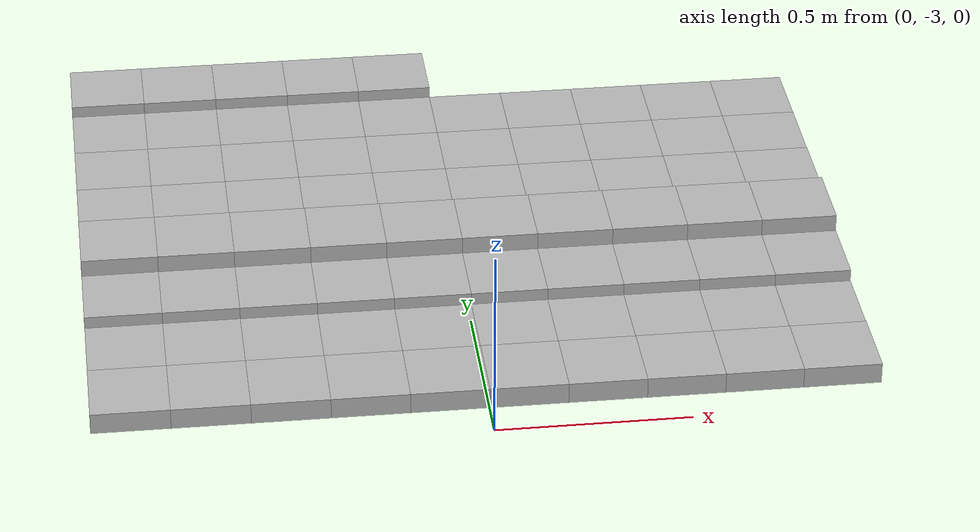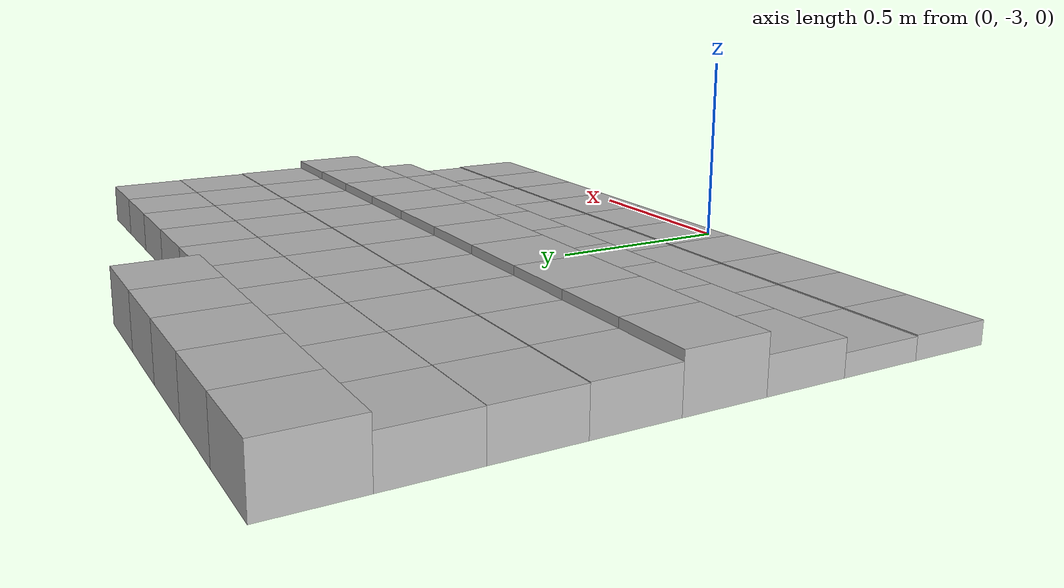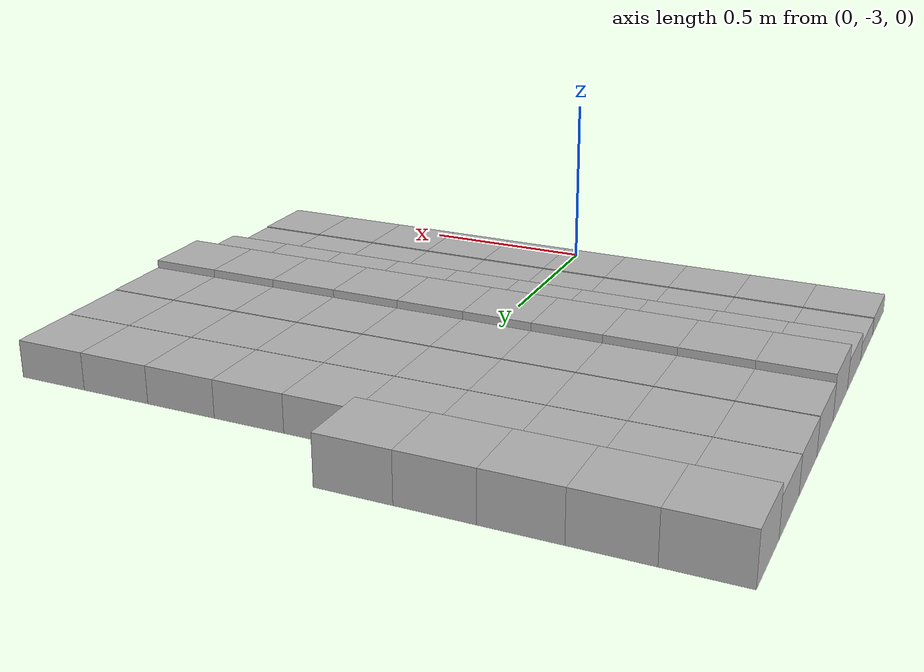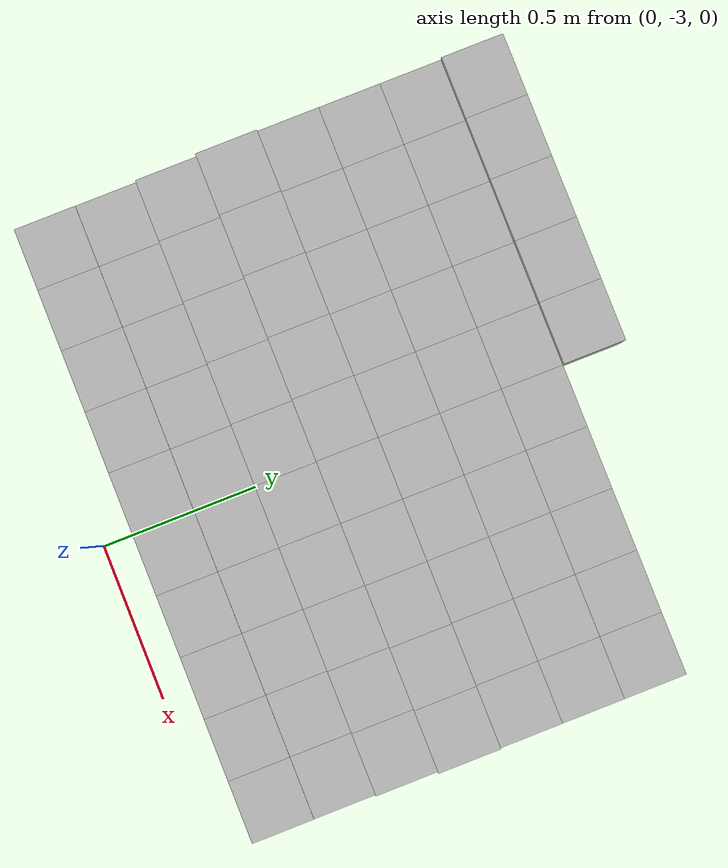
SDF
<sdf version="1.6">
 <model name="Terrain">
  <static>true</static>
  <link name="box_7_0">
   <pose>-0.9 -1.4 0.0680024866699 0 0 0</pose>
   <inertial>
    <mass>1.0</mass>
    <inertia><ixx>0.0</ixx><ixy>0.0</ixy><ixz>0.0</ixz><iyy>0.0</iyy><iyz>0.0</iyz><izz>0.0</izz></inertia>
   </inertial>
   <collision name="collision"><geometry><box><size>0.2 0.2 0.13600497334</size></box></geometry></collision>
   <visual name="visual"><geometry><box><size>0.2 0.2 0.13600497334</size></box></geometry></visual>
  </link>
  <link name="box_7_1">
   <pose>-0.7 -1.4 0.0680024866699 0 0 0</pose>
   <inertial>
    <mass>1.0</mass>
    <inertia><ixx>0.0</ixx><ixy>0.0</ixy><ixz>0.0</ixz><iyy>0.0</iyy><iyz>0.0</iyz><izz>0.0</izz></inertia>
   </inertial>
   <collision name="collision"><geometry><box><size>0.2 0.2 0.13600497334</size></box></geometry></collision>
   <visual name="visual"><geometry><box><size>0.2 0.2 0.13600497334</size></box></geometry></visual>
  </link>
  <link name="box_7_2">
   <pose>-0.5 -1.4 0.0680024866699 0 0 0</pose>
   <inertial>
    <mass>1.0</mass>
    <inertia><ixx>0.0</ixx><ixy>0.0</ixy><ixz>0.0</ixz><iyy>0.0</iyy><iyz>0.0</iyz><izz>0.0</izz></inertia>
   </inertial>
   <collision name="collision"><geometry><box><size>0.2 0.2 0.13600497334</size></box></geometry></collision>
   <visual name="visual"><geometry><box><size>0.2 0.2 0.13600497334</size></box></geometry></visual>
  </link>
  <link name="box_7_3">
   <pose>-0.3 -1.4 0.0680024866699 0 0 0</pose>
   <inertial>
    <mass>1.0</mass>
    <inertia><ixx>0.0</ixx><ixy>0.0</ixy><ixz>0.0</ixz><iyy>0.0</iyy><iyz>0.0</iyz><izz>0.0</izz></inertia>
   </inertial>
   <collision name="collision"><geometry><box><size>0.2 0.2 0.13600497334</size></box></geometry></collision>
   <visual name="visual"><geometry><box><size>0.2 0.2 0.13600497334</size></box></geometry></visual>
  </link>
  <link name="box_7_4">
   <pose>-0.1 -1.4 0.0680024866699 0 0 0</pose>
   <inertial>
    <mass>1.0</mass>
    <inertia><ixx>0.0</ixx><ixy>0.0</ixy><ixz>0.0</ixz><iyy>0.0</iyy><iyz>0.0</iyz><izz>0.0</izz></inertia>
   </inertial>
   <collision name="collision"><geometry><box><size>0.2 0.2 0.13600497334</size></box></geometry></collision>
   <visual name="visual"><geometry><box><size>0.2 0.2 0.13600497334</size></box></geometry></visual>
  </link>
  <link name="box_8_0">
   <pose>-0.9 -1.6 0.0525224692958 0 0 0</pose>
   <inertial>
    <mass>1.0</mass>
    <inertia><ixx>0.0</ixx><ixy>0.0</ixy><ixz>0.0</ixz><iyy>0.0</iyy><iyz>0.0</iyz><izz>0.0</izz></inertia>
   </inertial>
   <collision name="collision"><geometry><box><size>0.2 0.2 0.105044938592</size></box></geometry></collision>
   <visual name="visual"><geometry><box><size>0.2 0.2 0.105044938592</size></box></geometry></visual>
  </link>
  <link name="box_8_1">
   <pose>-0.7 -1.6 0.0525224692958 0 0 0</pose>
   <inertial>
    <mass>1.0</mass>
    <inertia><ixx>0.0</ixx><ixy>0.0</ixy><ixz>0.0</ixz><iyy>0.0</iyy><iyz>0.0</iyz><izz>0.0</izz></inertia>
   </inertial>
   <collision name="collision"><geometry><box><size>0.2 0.2 0.105044938592</size></box></geometry></collision>
   <visual name="visual"><geometry><box><size>0.2 0.2 0.105044938592</size></box></geometry></visual>
  </link>
  <link name="box_8_2">
   <pose>-0.5 -1.6 0.0525224692958 0 0 0</pose>
   <inertial>
    <mass>1.0</mass>
    <inertia><ixx>0.0</ixx><ixy>0.0</ixy><ixz>0.0</ixz><iyy>0.0</iyy><iyz>0.0</iyz><izz>0.0</izz></inertia>
   </inertial>
   <collision name="collision"><geometry><box><size>0.2 0.2 0.105044938592</size></box></geometry></collision>
   <visual name="visual"><geometry><box><size>0.2 0.2 0.105044938592</size></box></geometry></visual>
  </link>
  <link name="box_8_3">
   <pose>-0.3 -1.6 0.0525224692958 0 0 0</pose>
   <inertial>
    <mass>1.0</mass>
    <inertia><ixx>0.0</ixx><ixy>0.0</ixy><ixz>0.0</ixz><iyy>0.0</iyy><iyz>0.0</iyz><izz>0.0</izz></inertia>
   </inertial>
   <collision name="collision"><geometry><box><size>0.2 0.2 0.105044938592</size></box></geometry></collision>
   <visual name="visual"><geometry><box><size>0.2 0.2 0.105044938592</size></box></geometry></visual>
  </link>
  <link name="box_8_4">
   <pose>-0.1 -1.6 0.0525224692958 0 0 0</pose>
   <inertial>
    <mass>1.0</mass>
    <inertia><ixx>0.0</ixx><ixy>0.0</ixy><ixz>0.0</ixz><iyy>0.0</iyy><iyz>0.0</iyz><izz>0.0</izz></inertia>
   </inertial>
   <collision name="collision"><geometry><box><size>0.2 0.2 0.105044938592</size></box></geometry></collision>
   <visual name="visual"><geometry><box><size>0.2 0.2 0.105044938592</size></box></geometry></visual>
  </link>
  <link name="box_8_5">
   <pose>0.1 -1.6 0.0525224692958 0 0 0</pose>
   <inertial>
    <mass>1.0</mass>
    <inertia><ixx>0.0</ixx><ixy>0.0</ixy><ixz>0.0</ixz><iyy>0.0</iyy><iyz>0.0</iyz><izz>0.0</izz></inertia>
   </inertial>
   <collision name="collision"><geometry><box><size>0.2 0.2 0.105044938592</size></box></geometry></collision>
   <visual name="visual"><geometry><box><size>0.2 0.2 0.105044938592</size></box></geometry></visual>
  </link>
  <link name="box_8_6">
   <pose>0.3 -1.6 0.0525224692958 0 0 0</pose>
   <inertial>
    <mass>1.0</mass>
    <inertia><ixx>0.0</ixx><ixy>0.0</ixy><ixz>0.0</ixz><iyy>0.0</iyy><iyz>0.0</iyz><izz>0.0</izz></inertia>
   </inertial>
   <collision name="collision"><geometry><box><size>0.2 0.2 0.105044938592</size></box></geometry></collision>
   <visual name="visual"><geometry><box><size>0.2 0.2 0.105044938592</size></box></geometry></visual>
  </link>
  <link name="box_8_7">
   <pose>0.5 -1.6 0.0525224692958 0 0 0</pose>
   <inertial>
    <mass>1.0</mass>
    <inertia><ixx>0.0</ixx><ixy>0.0</ixy><ixz>0.0</ixz><iyy>0.0</iyy><iyz>0.0</iyz><izz>0.0</izz></inertia>
   </inertial>
   <collision name="collision"><geometry><box><size>0.2 0.2 0.105044938592</size></box></geometry></collision>
   <visual name="visual"><geometry><box><size>0.2 0.2 0.105044938592</size></box></geometry></visual>
  </link>
  <link name="box_8_8">
   <pose>0.7 -1.6 0.0525224692958 0 0 0</pose>
   <inertial>
    <mass>1.0</mass>
    <inertia><ixx>0.0</ixx><ixy>0.0</ixy><ixz>0.0</ixz><iyy>0.0</iyy><iyz>0.0</iyz><izz>0.0</izz></inertia>
   </inertial>
   <collision name="collision"><geometry><box><size>0.2 0.2 0.105044938592</size></box></geometry></collision>
   <visual name="visual"><geometry><box><size>0.2 0.2 0.105044938592</size></box></geometry></visual>
  </link>
  <link name="box_8_9">
   <pose>0.9 -1.6 0.0525224692958 0 0 0</pose>
   <inertial>
    <mass>1.0</mass>
    <inertia><ixx>0.0</ixx><ixy>0.0</ixy><ixz>0.0</ixz><iyy>0.0</iyy><iyz>0.0</iyz><izz>0.0</izz></inertia>
   </inertial>
   <collision name="collision"><geometry><box><size>0.2 0.2 0.105044938592</size></box></geometry></collision>
   <visual name="visual"><geometry><box><size>0.2 0.2 0.105044938592</size></box></geometry></visual>
  </link>
  <link name="box_9_0">
   <pose>-0.9 -1.8 0.0529010168153 0 0 0</pose>
   <inertial>
    <mass>1.0</mass>
    <inertia><ixx>0.0</ixx><ixy>0.0</ixy><ixz>0.0</ixz><iyy>0.0</iyy><iyz>0.0</iyz><izz>0.0</izz></inertia>
   </inertial>
   <collision name="collision"><geometry><box><size>0.2 0.2 0.105802033631</size></box></geometry></collision>
   <visual name="visual"><geometry><box><size>0.2 0.2 0.105802033631</size></box></geometry></visual>
  </link>
  <link name="box_9_1">
   <pose>-0.7 -1.8 0.0529010168153 0 0 0</pose>
   <inertial>
    <mass>1.0</mass>
    <inertia><ixx>0.0</ixx><ixy>0.0</ixy><ixz>0.0</ixz><iyy>0.0</iyy><iyz>0.0</iyz><izz>0.0</izz></inertia>
   </inertial>
   <collision name="collision"><geometry><box><size>0.2 0.2 0.105802033631</size></box></geometry></collision>
   <visual name="visual"><geometry><box><size>0.2 0.2 0.105802033631</size></box></geometry></visual>
  </link>
  <link name="box_9_2">
   <pose>-0.5 -1.8 0.0529010168153 0 0 0</pose>
   <inertial>
    <mass>1.0</mass>
    <inertia><ixx>0.0</ixx><ixy>0.0</ixy><ixz>0.0</ixz><iyy>0.0</iyy><iyz>0.0</iyz><izz>0.0</izz></inertia>
   </inertial>
   <collision name="collision"><geometry><box><size>0.2 0.2 0.105802033631</size></box></geometry></collision>
   <visual name="visual"><geometry><box><size>0.2 0.2 0.105802033631</size></box></geometry></visual>
  </link>
  <link name="box_9_3">
   <pose>-0.3 -1.8 0.0529010168153 0 0 0</pose>
   <inertial>
    <mass>1.0</mass>
    <inertia><ixx>0.0</ixx><ixy>0.0</ixy><ixz>0.0</ixz><iyy>0.0</iyy><iyz>0.0</iyz><izz>0.0</izz></inertia>
   </inertial>
   <collision name="collision"><geometry><box><size>0.2 0.2 0.105802033631</size></box></geometry></collision>
   <visual name="visual"><geometry><box><size>0.2 0.2 0.105802033631</size></box></geometry></visual>
  </link>
  <link name="box_9_4">
   <pose>-0.1 -1.8 0.0529010168153 0 0 0</pose>
   <inertial>
    <mass>1.0</mass>
    <inertia><ixx>0.0</ixx><ixy>0.0</ixy><ixz>0.0</ixz><iyy>0.0</iyy><iyz>0.0</iyz><izz>0.0</izz></inertia>
   </inertial>
   <collision name="collision"><geometry><box><size>0.2 0.2 0.105802033631</size></box></geometry></collision>
   <visual name="visual"><geometry><box><size>0.2 0.2 0.105802033631</size></box></geometry></visual>
  </link>
  <link name="box_9_5">
   <pose>0.1 -1.8 0.0529010168153 0 0 0</pose>
   <inertial>
    <mass>1.0</mass>
    <inertia><ixx>0.0</ixx><ixy>0.0</ixy><ixz>0.0</ixz><iyy>0.0</iyy><iyz>0.0</iyz><izz>0.0</izz></inertia>
   </inertial>
   <collision name="collision"><geometry><box><size>0.2 0.2 0.105802033631</size></box></geometry></collision>
   <visual name="visual"><geometry><box><size>0.2 0.2 0.105802033631</size></box></geometry></visual>
  </link>
  <link name="box_9_6">
   <pose>0.3 -1.8 0.0529010168153 0 0 0</pose>
   <inertial>
    <mass>1.0</mass>
    <inertia><ixx>0.0</ixx><ixy>0.0</ixy><ixz>0.0</ixz><iyy>0.0</iyy><iyz>0.0</iyz><izz>0.0</izz></inertia>
   </inertial>
   <collision name="collision"><geometry><box><size>0.2 0.2 0.105802033631</size></box></geometry></collision>
   <visual name="visual"><geometry><box><size>0.2 0.2 0.105802033631</size></box></geometry></visual>
  </link>
  <link name="box_9_7">
   <pose>0.5 -1.8 0.0529010168153 0 0 0</pose>
   <inertial>
    <mass>1.0</mass>
    <inertia><ixx>0.0</ixx><ixy>0.0</ixy><ixz>0.0</ixz><iyy>0.0</iyy><iyz>0.0</iyz><izz>0.0</izz></inertia>
   </inertial>
   <collision name="collision"><geometry><box><size>0.2 0.2 0.105802033631</size></box></geometry></collision>
   <visual name="visual"><geometry><box><size>0.2 0.2 0.105802033631</size></box></geometry></visual>
  </link>
  <link name="box_9_8">
   <pose>0.7 -1.8 0.0529010168153 0 0 0</pose>
   <inertial>
    <mass>1.0</mass>
    <inertia><ixx>0.0</ixx><ixy>0.0</ixy><ixz>0.0</ixz><iyy>0.0</iyy><iyz>0.0</iyz><izz>0.0</izz></inertia>
   </inertial>
   <collision name="collision"><geometry><box><size>0.2 0.2 0.105802033631</size></box></geometry></collision>
   <visual name="visual"><geometry><box><size>0.2 0.2 0.105802033631</size></box></geometry></visual>
  </link>
  <link name="box_9_9">
   <pose>0.9 -1.8 0.0529010168153 0 0 0</pose>
   <inertial>
    <mass>1.0</mass>
    <inertia><ixx>0.0</ixx><ixy>0.0</ixy><ixz>0.0</ixz><iyy>0.0</iyy><iyz>0.0</iyz><izz>0.0</izz></inertia>
   </inertial>
   <collision name="collision"><geometry><box><size>0.2 0.2 0.105802033631</size></box></geometry></collision>
   <visual name="visual"><geometry><box><size>0.2 0.2 0.105802033631</size></box></geometry></visual>
  </link>
  <link name="box_10_0">
   <pose>-0.9 -2.0 0.0537871574872 0 0 0</pose>
   <inertial>
    <mass>1.0</mass>
    <inertia><ixx>0.0</ixx><ixy>0.0</ixy><ixz>0.0</ixz><iyy>0.0</iyy><iyz>0.0</iyz><izz>0.0</izz></inertia>
   </inertial>
   <collision name="collision"><geometry><box><size>0.2 0.2 0.107574314974</size></box></geometry></collision>
   <visual name="visual"><geometry><box><size>0.2 0.2 0.107574314974</size></box></geometry></visual>
  </link>
  <link name="box_10_1">
   <pose>-0.7 -2.0 0.0537871574872 0 0 0</pose>
   <inertial>
    <mass>1.0</mass>
    <inertia><ixx>0.0</ixx><ixy>0.0</ixy><ixz>0.0</ixz><iyy>0.0</iyy><iyz>0.0</iyz><izz>0.0</izz></inertia>
   </inertial>
   <collision name="collision"><geometry><box><size>0.2 0.2 0.107574314974</size></box></geometry></collision>
   <visual name="visual"><geometry><box><size>0.2 0.2 0.107574314974</size></box></geometry></visual>
  </link>
  <link name="box_10_2">
   <pose>-0.5 -2.0 0.0537871574872 0 0 0</pose>
   <inertial>
    <mass>1.0</mass>
    <inertia><ixx>0.0</ixx><ixy>0.0</ixy><ixz>0.0</ixz><iyy>0.0</iyy><iyz>0.0</iyz><izz>0.0</izz></inertia>
   </inertial>
   <collision name="collision"><geometry><box><size>0.2 0.2 0.107574314974</size></box></geometry></collision>
   <visual name="visual"><geometry><box><size>0.2 0.2 0.107574314974</size></box></geometry></visual>
  </link>
  <link name="box_10_3">
   <pose>-0.3 -2.0 0.0537871574872 0 0 0</pose>
   <inertial>
    <mass>1.0</mass>
    <inertia><ixx>0.0</ixx><ixy>0.0</ixy><ixz>0.0</ixz><iyy>0.0</iyy><iyz>0.0</iyz><izz>0.0</izz></inertia>
   </inertial>
   <collision name="collision"><geometry><box><size>0.2 0.2 0.107574314974</size></box></geometry></collision>
   <visual name="visual"><geometry><box><size>0.2 0.2 0.107574314974</size></box></geometry></visual>
  </link>
  <link name="box_10_4">
   <pose>-0.1 -2.0 0.0537871574872 0 0 0</pose>
   <inertial>
    <mass>1.0</mass>
    <inertia><ixx>0.0</ixx><ixy>0.0</ixy><ixz>0.0</ixz><iyy>0.0</iyy><iyz>0.0</iyz><izz>0.0</izz></inertia>
   </inertial>
   <collision name="collision"><geometry><box><size>0.2 0.2 0.107574314974</size></box></geometry></collision>
   <visual name="visual"><geometry><box><size>0.2 0.2 0.107574314974</size></box></geometry></visual>
  </link>
  <link name="box_10_5">
   <pose>0.1 -2.0 0.0537871574872 0 0 0</pose>
   <inertial>
    <mass>1.0</mass>
    <inertia><ixx>0.0</ixx><ixy>0.0</ixy><ixz>0.0</ixz><iyy>0.0</iyy><iyz>0.0</iyz><izz>0.0</izz></inertia>
   </inertial>
   <collision name="collision"><geometry><box><size>0.2 0.2 0.107574314974</size></box></geometry></collision>
   <visual name="visual"><geometry><box><size>0.2 0.2 0.107574314974</size></box></geometry></visual>
  </link>
  <link name="box_10_6">
   <pose>0.3 -2.0 0.0537871574872 0 0 0</pose>
   <inertial>
    <mass>1.0</mass>
    <inertia><ixx>0.0</ixx><ixy>0.0</ixy><ixz>0.0</ixz><iyy>0.0</iyy><iyz>0.0</iyz><izz>0.0</izz></inertia>
   </inertial>
   <collision name="collision"><geometry><box><size>0.2 0.2 0.107574314974</size></box></geometry></collision>
   <visual name="visual"><geometry><box><size>0.2 0.2 0.107574314974</size></box></geometry></visual>
  </link>
  <link name="box_10_7">
   <pose>0.5 -2.0 0.0537871574872 0 0 0</pose>
   <inertial>
    <mass>1.0</mass>
    <inertia><ixx>0.0</ixx><ixy>0.0</ixy><ixz>0.0</ixz><iyy>0.0</iyy><iyz>0.0</iyz><izz>0.0</izz></inertia>
   </inertial>
   <collision name="collision"><geometry><box><size>0.2 0.2 0.107574314974</size></box></geometry></collision>
   <visual name="visual"><geometry><box><size>0.2 0.2 0.107574314974</size></box></geometry></visual>
  </link>
  <link name="box_10_8">
   <pose>0.7 -2.0 0.0537871574872 0 0 0</pose>
   <inertial>
    <mass>1.0</mass>
    <inertia><ixx>0.0</ixx><ixy>0.0</ixy><ixz>0.0</ixz><iyy>0.0</iyy><iyz>0.0</iyz><izz>0.0</izz></inertia>
   </inertial>
   <collision name="collision"><geometry><box><size>0.2 0.2 0.107574314974</size></box></geometry></collision>
   <visual name="visual"><geometry><box><size>0.2 0.2 0.107574314974</size></box></geometry></visual>
  </link>
  <link name="box_10_9">
   <pose>0.9 -2.0 0.0537871574872 0 0 0</pose>
   <inertial>
    <mass>1.0</mass>
    <inertia><ixx>0.0</ixx><ixy>0.0</ixy><ixz>0.0</ixz><iyy>0.0</iyy><iyz>0.0</iyz><izz>0.0</izz></inertia>
   </inertial>
   <collision name="collision"><geometry><box><size>0.2 0.2 0.107574314974</size></box></geometry></collision>
   <visual name="visual"><geometry><box><size>0.2 0.2 0.107574314974</size></box></geometry></visual>
  </link>
  <link name="box_11_0">
   <pose>-0.9 -2.2 0.0651597824862 0 0 0</pose>
   <inertial>
    <mass>1.0</mass>
    <inertia><ixx>0.0</ixx><ixy>0.0</ixy><ixz>0.0</ixz><iyy>0.0</iyy><iyz>0.0</iyz><izz>0.0</izz></inertia>
   </inertial>
   <collision name="collision"><geometry><box><size>0.2 0.2 0.130319564972</size></box></geometry></collision>
   <visual name="visual"><geometry><box><size>0.2 0.2 0.130319564972</size></box></geometry></visual>
  </link>
  <link name="box_11_1">
   <pose>-0.7 -2.2 0.0651597824862 0 0 0</pose>
   <inertial>
    <mass>1.0</mass>
    <inertia><ixx>0.0</ixx><ixy>0.0</ixy><ixz>0.0</ixz><iyy>0.0</iyy><iyz>0.0</iyz><izz>0.0</izz></inertia>
   </inertial>
   <collision name="collision"><geometry><box><size>0.2 0.2 0.130319564972</size></box></geometry></collision>
   <visual name="visual"><geometry><box><size>0.2 0.2 0.130319564972</size></box></geometry></visual>
  </link>
  <link name="box_11_2">
   <pose>-0.5 -2.2 0.0651597824862 0 0 0</pose>
   <inertial>
    <mass>1.0</mass>
    <inertia><ixx>0.0</ixx><ixy>0.0</ixy><ixz>0.0</ixz><iyy>0.0</iyy><iyz>0.0</iyz><izz>0.0</izz></inertia>
   </inertial>
   <collision name="collision"><geometry><box><size>0.2 0.2 0.130319564972</size></box></geometry></collision>
   <visual name="visual"><geometry><box><size>0.2 0.2 0.130319564972</size></box></geometry></visual>
  </link>
  <link name="box_11_3">
   <pose>-0.3 -2.2 0.0651597824862 0 0 0</pose>
   <inertial>
    <mass>1.0</mass>
    <inertia><ixx>0.0</ixx><ixy>0.0</ixy><ixz>0.0</ixz><iyy>0.0</iyy><iyz>0.0</iyz><izz>0.0</izz></inertia>
   </inertial>
   <collision name="collision"><geometry><box><size>0.2 0.2 0.130319564972</size></box></geometry></collision>
   <visual name="visual"><geometry><box><size>0.2 0.2 0.130319564972</size></box></geometry></visual>
  </link>
  <link name="box_11_4">
   <pose>-0.1 -2.2 0.0651597824862 0 0 0</pose>
   <inertial>
    <mass>1.0</mass>
    <inertia><ixx>0.0</ixx><ixy>0.0</ixy><ixz>0.0</ixz><iyy>0.0</iyy><iyz>0.0</iyz><izz>0.0</izz></inertia>
   </inertial>
   <collision name="collision"><geometry><box><size>0.2 0.2 0.130319564972</size></box></geometry></collision>
   <visual name="visual"><geometry><box><size>0.2 0.2 0.130319564972</size></box></geometry></visual>
  </link>
  <link name="box_11_5">
   <pose>0.1 -2.2 0.0651597824862 0 0 0</pose>
   <inertial>
    <mass>1.0</mass>
    <inertia><ixx>0.0</ixx><ixy>0.0</ixy><ixz>0.0</ixz><iyy>0.0</iyy><iyz>0.0</iyz><izz>0.0</izz></inertia>
   </inertial>
   <collision name="collision"><geometry><box><size>0.2 0.2 0.130319564972</size></box></geometry></collision>
   <visual name="visual"><geometry><box><size>0.2 0.2 0.130319564972</size></box></geometry></visual>
  </link>
  <link name="box_11_6">
   <pose>0.3 -2.2 0.0651597824862 0 0 0</pose>
   <inertial>
    <mass>1.0</mass>
    <inertia><ixx>0.0</ixx><ixy>0.0</ixy><ixz>0.0</ixz><iyy>0.0</iyy><iyz>0.0</iyz><izz>0.0</izz></inertia>
   </inertial>
   <collision name="collision"><geometry><box><size>0.2 0.2 0.130319564972</size></box></geometry></collision>
   <visual name="visual"><geometry><box><size>0.2 0.2 0.130319564972</size></box></geometry></visual>
  </link>
  <link name="box_11_7">
   <pose>0.5 -2.2 0.0651597824862 0 0 0</pose>
   <inertial>
    <mass>1.0</mass>
    <inertia><ixx>0.0</ixx><ixy>0.0</ixy><ixz>0.0</ixz><iyy>0.0</iyy><iyz>0.0</iyz><izz>0.0</izz></inertia>
   </inertial>
   <collision name="collision"><geometry><box><size>0.2 0.2 0.130319564972</size></box></geometry></collision>
   <visual name="visual"><geometry><box><size>0.2 0.2 0.130319564972</size></box></geometry></visual>
  </link>
  <link name="box_11_8">
   <pose>0.7 -2.2 0.0651597824862 0 0 0</pose>
   <inertial>
    <mass>1.0</mass>
    <inertia><ixx>0.0</ixx><ixy>0.0</ixy><ixz>0.0</ixz><iyy>0.0</iyy><iyz>0.0</iyz><izz>0.0</izz></inertia>
   </inertial>
   <collision name="collision"><geometry><box><size>0.2 0.2 0.130319564972</size></box></geometry></collision>
   <visual name="visual"><geometry><box><size>0.2 0.2 0.130319564972</size></box></geometry></visual>
  </link>
  <link name="box_11_9">
   <pose>0.9 -2.2 0.0651597824862 0 0 0</pose>
   <inertial>
    <mass>1.0</mass>
    <inertia><ixx>0.0</ixx><ixy>0.0</ixy><ixz>0.0</ixz><iyy>0.0</iyy><iyz>0.0</iyz><izz>0.0</izz></inertia>
   </inertial>
   <collision name="collision"><geometry><box><size>0.2 0.2 0.130319564972</size></box></geometry></collision>
   <visual name="visual"><geometry><box><size>0.2 0.2 0.130319564972</size></box></geometry></visual>
  </link>
  <link name="box_12_0">
   <pose>-0.9 -2.4 0.0423391693615 0 0 0</pose>
   <inertial>
    <mass>1.0</mass>
    <inertia><ixx>0.0</ixx><ixy>0.0</ixy><ixz>0.0</ixz><iyy>0.0</iyy><iyz>0.0</iyz><izz>0.0</izz></inertia>
   </inertial>
   <collision name="collision"><geometry><box><size>0.2 0.2 0.084678338723</size></box></geometry></collision>
   <visual name="visual"><geometry><box><size>0.2 0.2 0.084678338723</size></box></geometry></visual>
  </link>
  <link name="box_12_1">
   <pose>-0.7 -2.4 0.0423391693615 0 0 0</pose>
   <inertial>
    <mass>1.0</mass>
    <inertia><ixx>0.0</ixx><ixy>0.0</ixy><ixz>0.0</ixz><iyy>0.0</iyy><iyz>0.0</iyz><izz>0.0</izz></inertia>
   </inertial>
   <collision name="collision"><geometry><box><size>0.2 0.2 0.084678338723</size></box></geometry></collision>
   <visual name="visual"><geometry><box><size>0.2 0.2 0.084678338723</size></box></geometry></visual>
  </link>
  <link name="box_12_2">
   <pose>-0.5 -2.4 0.0423391693615 0 0 0</pose>
   <inertial>
    <mass>1.0</mass>
    <inertia><ixx>0.0</ixx><ixy>0.0</ixy><ixz>0.0</ixz><iyy>0.0</iyy><iyz>0.0</iyz><izz>0.0</izz></inertia>
   </inertial>
   <collision name="collision"><geometry><box><size>0.2 0.2 0.084678338723</size></box></geometry></collision>
   <visual name="visual"><geometry><box><size>0.2 0.2 0.084678338723</size></box></geometry></visual>
  </link>
  <link name="box_12_3">
   <pose>-0.3 -2.4 0.0423391693615 0 0 0</pose>
   <inertial>
    <mass>1.0</mass>
    <inertia><ixx>0.0</ixx><ixy>0.0</ixy><ixz>0.0</ixz><iyy>0.0</iyy><iyz>0.0</iyz><izz>0.0</izz></inertia>
   </inertial>
   <collision name="collision"><geometry><box><size>0.2 0.2 0.084678338723</size></box></geometry></collision>
   <visual name="visual"><geometry><box><size>0.2 0.2 0.084678338723</size></box></geometry></visual>
  </link>
  <link name="box_12_4">
   <pose>-0.1 -2.4 0.0423391693615 0 0 0</pose>
   <inertial>
    <mass>1.0</mass>
    <inertia><ixx>0.0</ixx><ixy>0.0</ixy><ixz>0.0</ixz><iyy>0.0</iyy><iyz>0.0</iyz><izz>0.0</izz></inertia>
   </inertial>
   <collision name="collision"><geometry><box><size>0.2 0.2 0.084678338723</size></box></geometry></collision>
   <visual name="visual"><geometry><box><size>0.2 0.2 0.084678338723</size></box></geometry></visual>
  </link>
  <link name="box_12_5">
   <pose>0.1 -2.4 0.0423391693615 0 0 0</pose>
   <inertial>
    <mass>1.0</mass>
    <inertia><ixx>0.0</ixx><ixy>0.0</ixy><ixz>0.0</ixz><iyy>0.0</iyy><iyz>0.0</iyz><izz>0.0</izz></inertia>
   </inertial>
   <collision name="collision"><geometry><box><size>0.2 0.2 0.084678338723</size></box></geometry></collision>
   <visual name="visual"><geometry><box><size>0.2 0.2 0.084678338723</size></box></geometry></visual>
  </link>
  <link name="box_12_6">
   <pose>0.3 -2.4 0.0423391693615 0 0 0</pose>
   <inertial>
    <mass>1.0</mass>
    <inertia><ixx>0.0</ixx><ixy>0.0</ixy><ixz>0.0</ixz><iyy>0.0</iyy><iyz>0.0</iyz><izz>0.0</izz></inertia>
   </inertial>
   <collision name="collision"><geometry><box><size>0.2 0.2 0.084678338723</size></box></geometry></collision>
   <visual name="visual"><geometry><box><size>0.2 0.2 0.084678338723</size></box></geometry></visual>
  </link>
  <link name="box_12_7">
   <pose>0.5 -2.4 0.0423391693615 0 0 0</pose>
   <inertial>
    <mass>1.0</mass>
    <inertia><ixx>0.0</ixx><ixy>0.0</ixy><ixz>0.0</ixz><iyy>0.0</iyy><iyz>0.0</iyz><izz>0.0</izz></inertia>
   </inertial>
   <collision name="collision"><geometry><box><size>0.2 0.2 0.084678338723</size></box></geometry></collision>
   <visual name="visual"><geometry><box><size>0.2 0.2 0.084678338723</size></box></geometry></visual>
  </link>
  <link name="box_12_8">
   <pose>0.7 -2.4 0.0423391693615 0 0 0</pose>
   <inertial>
    <mass>1.0</mass>
    <inertia><ixx>0.0</ixx><ixy>0.0</ixy><ixz>0.0</ixz><iyy>0.0</iyy><iyz>0.0</iyz><izz>0.0</izz></inertia>
   </inertial>
   <collision name="collision"><geometry><box><size>0.2 0.2 0.084678338723</size></box></geometry></collision>
   <visual name="visual"><geometry><box><size>0.2 0.2 0.084678338723</size></box></geometry></visual>
  </link>
  <link name="box_12_9">
   <pose>0.9 -2.4 0.0423391693615 0 0 0</pose>
   <inertial>
    <mass>1.0</mass>
    <inertia><ixx>0.0</ixx><ixy>0.0</ixy><ixz>0.0</ixz><iyy>0.0</iyy><iyz>0.0</iyz><izz>0.0</izz></inertia>
   </inertial>
   <collision name="collision"><geometry><box><size>0.2 0.2 0.084678338723</size></box></geometry></collision>
   <visual name="visual"><geometry><box><size>0.2 0.2 0.084678338723</size></box></geometry></visual>
  </link>
  <link name="box_13_0">
   <pose>-0.9 -2.6 0.0262871448549 0 0 0</pose>
   <inertial>
    <mass>1.0</mass>
    <inertia><ixx>0.0</ixx><ixy>0.0</ixy><ixz>0.0</ixz><iyy>0.0</iyy><iyz>0.0</iyz><izz>0.0</izz></inertia>
   </inertial>
   <collision name="collision"><geometry><box><size>0.2 0.2 0.0525742897098</size></box></geometry></collision>
   <visual name="visual"><geometry><box><size>0.2 0.2 0.0525742897098</size></box></geometry></visual>
  </link>
  <link name="box_13_1">
   <pose>-0.7 -2.6 0.0262871448549 0 0 0</pose>
   <inertial>
    <mass>1.0</mass>
    <inertia><ixx>0.0</ixx><ixy>0.0</ixy><ixz>0.0</ixz><iyy>0.0</iyy><iyz>0.0</iyz><izz>0.0</izz></inertia>
   </inertial>
   <collision name="collision"><geometry><box><size>0.2 0.2 0.0525742897098</size></box></geometry></collision>
   <visual name="visual"><geometry><box><size>0.2 0.2 0.0525742897098</size></box></geometry></visual>
  </link>
  <link name="box_13_2">
   <pose>-0.5 -2.6 0.0262871448549 0 0 0</pose>
   <inertial>
    <mass>1.0</mass>
    <inertia><ixx>0.0</ixx><ixy>0.0</ixy><ixz>0.0</ixz><iyy>0.0</iyy><iyz>0.0</iyz><izz>0.0</izz></inertia>
   </inertial>
   <collision name="collision"><geometry><box><size>0.2 0.2 0.0525742897098</size></box></geometry></collision>
   <visual name="visual"><geometry><box><size>0.2 0.2 0.0525742897098</size></box></geometry></visual>
  </link>
  <link name="box_13_3">
   <pose>-0.3 -2.6 0.0262871448549 0 0 0</pose>
   <inertial>
    <mass>1.0</mass>
    <inertia><ixx>0.0</ixx><ixy>0.0</ixy><ixz>0.0</ixz><iyy>0.0</iyy><iyz>0.0</iyz><izz>0.0</izz></inertia>
   </inertial>
   <collision name="collision"><geometry><box><size>0.2 0.2 0.0525742897098</size></box></geometry></collision>
   <visual name="visual"><geometry><box><size>0.2 0.2 0.0525742897098</size></box></geometry></visual>
  </link>
  <link name="box_13_4">
   <pose>-0.1 -2.6 0.0262871448549 0 0 0</pose>
   <inertial>
    <mass>1.0</mass>
    <inertia><ixx>0.0</ixx><ixy>0.0</ixy><ixz>0.0</ixz><iyy>0.0</iyy><iyz>0.0</iyz><izz>0.0</izz></inertia>
   </inertial>
   <collision name="collision"><geometry><box><size>0.2 0.2 0.0525742897098</size></box></geometry></collision>
   <visual name="visual"><geometry><box><size>0.2 0.2 0.0525742897098</size></box></geometry></visual>
  </link>
  <link name="box_13_5">
   <pose>0.1 -2.6 0.0262871448549 0 0 0</pose>
   <inertial>
    <mass>1.0</mass>
    <inertia><ixx>0.0</ixx><ixy>0.0</ixy><ixz>0.0</ixz><iyy>0.0</iyy><iyz>0.0</iyz><izz>0.0</izz></inertia>
   </inertial>
   <collision name="collision"><geometry><box><size>0.2 0.2 0.0525742897098</size></box></geometry></collision>
   <visual name="visual"><geometry><box><size>0.2 0.2 0.0525742897098</size></box></geometry></visual>
  </link>
  <link name="box_13_6">
   <pose>0.3 -2.6 0.0262871448549 0 0 0</pose>
   <inertial>
    <mass>1.0</mass>
    <inertia><ixx>0.0</ixx><ixy>0.0</ixy><ixz>0.0</ixz><iyy>0.0</iyy><iyz>0.0</iyz><izz>0.0</izz></inertia>
   </inertial>
   <collision name="collision"><geometry><box><size>0.2 0.2 0.0525742897098</size></box></geometry></collision>
   <visual name="visual"><geometry><box><size>0.2 0.2 0.0525742897098</size></box></geometry></visual>
  </link>
  <link name="box_13_7">
   <pose>0.5 -2.6 0.0262871448549 0 0 0</pose>
   <inertial>
    <mass>1.0</mass>
    <inertia><ixx>0.0</ixx><ixy>0.0</ixy><ixz>0.0</ixz><iyy>0.0</iyy><iyz>0.0</iyz><izz>0.0</izz></inertia>
   </inertial>
   <collision name="collision"><geometry><box><size>0.2 0.2 0.0525742897098</size></box></geometry></collision>
   <visual name="visual"><geometry><box><size>0.2 0.2 0.0525742897098</size></box></geometry></visual>
  </link>
  <link name="box_13_8">
   <pose>0.7 -2.6 0.0262871448549 0 0 0</pose>
   <inertial>
    <mass>1.0</mass>
    <inertia><ixx>0.0</ixx><ixy>0.0</ixy><ixz>0.0</ixz><iyy>0.0</iyy><iyz>0.0</iyz><izz>0.0</izz></inertia>
   </inertial>
   <collision name="collision"><geometry><box><size>0.2 0.2 0.0525742897098</size></box></geometry></collision>
   <visual name="visual"><geometry><box><size>0.2 0.2 0.0525742897098</size></box></geometry></visual>
  </link>
  <link name="box_13_9">
   <pose>0.9 -2.6 0.0262871448549 0 0 0</pose>
   <inertial>
    <mass>1.0</mass>
    <inertia><ixx>0.0</ixx><ixy>0.0</ixy><ixz>0.0</ixz><iyy>0.0</iyy><iyz>0.0</iyz><izz>0.0</izz></inertia>
   </inertial>
   <collision name="collision"><geometry><box><size>0.2 0.2 0.0525742897098</size></box></geometry></collision>
   <visual name="visual"><geometry><box><size>0.2 0.2 0.0525742897098</size></box></geometry></visual>
  </link>
  <link name="box_14_0">
   <pose>-0.9 -2.8 0.0277823281504 0 0 0</pose>
   <inertial>
    <mass>1.0</mass>
    <inertia><ixx>0.0</ixx><ixy>0.0</ixy><ixz>0.0</ixz><iyy>0.0</iyy><iyz>0.0</iyz><izz>0.0</izz></inertia>
   </inertial>
   <collision name="collision"><geometry><box><size>0.2 0.2 0.0555646563008</size></box></geometry></collision>
   <visual name="visual"><geometry><box><size>0.2 0.2 0.0555646563008</size></box></geometry></visual>
  </link>
  <link name="box_14_1">
   <pose>-0.7 -2.8 0.0277823281504 0 0 0</pose>
   <inertial>
    <mass>1.0</mass>
    <inertia><ixx>0.0</ixx><ixy>0.0</ixy><ixz>0.0</ixz><iyy>0.0</iyy><iyz>0.0</iyz><izz>0.0</izz></inertia>
   </inertial>
   <collision name="collision"><geometry><box><size>0.2 0.2 0.0555646563008</size></box></geometry></collision>
   <visual name="visual"><geometry><box><size>0.2 0.2 0.0555646563008</size></box></geometry></visual>
  </link>
  <link name="box_14_2">
   <pose>-0.5 -2.8 0.0277823281504 0 0 0</pose>
   <inertial>
    <mass>1.0</mass>
    <inertia><ixx>0.0</ixx><ixy>0.0</ixy><ixz>0.0</ixz><iyy>0.0</iyy><iyz>0.0</iyz><izz>0.0</izz></inertia>
   </inertial>
   <collision name="collision"><geometry><box><size>0.2 0.2 0.0555646563008</size></box></geometry></collision>
   <visual name="visual"><geometry><box><size>0.2 0.2 0.0555646563008</size></box></geometry></visual>
  </link>
  <link name="box_14_3">
   <pose>-0.3 -2.8 0.0277823281504 0 0 0</pose>
   <inertial>
    <mass>1.0</mass>
    <inertia><ixx>0.0</ixx><ixy>0.0</ixy><ixz>0.0</ixz><iyy>0.0</iyy><iyz>0.0</iyz><izz>0.0</izz></inertia>
   </inertial>
   <collision name="collision"><geometry><box><size>0.2 0.2 0.0555646563008</size></box></geometry></collision>
   <visual name="visual"><geometry><box><size>0.2 0.2 0.0555646563008</size></box></geometry></visual>
  </link>
  <link name="box_14_4">
   <pose>-0.1 -2.8 0.0277823281504 0 0 0</pose>
   <inertial>
    <mass>1.0</mass>
    <inertia><ixx>0.0</ixx><ixy>0.0</ixy><ixz>0.0</ixz><iyy>0.0</iyy><iyz>0.0</iyz><izz>0.0</izz></inertia>
   </inertial>
   <collision name="collision"><geometry><box><size>0.2 0.2 0.0555646563008</size></box></geometry></collision>
   <visual name="visual"><geometry><box><size>0.2 0.2 0.0555646563008</size></box></geometry></visual>
  </link>
  <link name="box_14_5">
   <pose>0.1 -2.8 0.0277823281504 0 0 0</pose>
   <inertial>
    <mass>1.0</mass>
    <inertia><ixx>0.0</ixx><ixy>0.0</ixy><ixz>0.0</ixz><iyy>0.0</iyy><iyz>0.0</iyz><izz>0.0</izz></inertia>
   </inertial>
   <collision name="collision"><geometry><box><size>0.2 0.2 0.0555646563008</size></box></geometry></collision>
   <visual name="visual"><geometry><box><size>0.2 0.2 0.0555646563008</size></box></geometry></visual>
  </link>
  <link name="box_14_6">
   <pose>0.3 -2.8 0.0277823281504 0 0 0</pose>
   <inertial>
    <mass>1.0</mass>
    <inertia><ixx>0.0</ixx><ixy>0.0</ixy><ixz>0.0</ixz><iyy>0.0</iyy><iyz>0.0</iyz><izz>0.0</izz></inertia>
   </inertial>
   <collision name="collision"><geometry><box><size>0.2 0.2 0.0555646563008</size></box></geometry></collision>
   <visual name="visual"><geometry><box><size>0.2 0.2 0.0555646563008</size></box></geometry></visual>
  </link>
  <link name="box_14_7">
   <pose>0.5 -2.8 0.0277823281504 0 0 0</pose>
   <inertial>
    <mass>1.0</mass>
    <inertia><ixx>0.0</ixx><ixy>0.0</ixy><ixz>0.0</ixz><iyy>0.0</iyy><iyz>0.0</iyz><izz>0.0</izz></inertia>
   </inertial>
   <collision name="collision"><geometry><box><size>0.2 0.2 0.0555646563008</size></box></geometry></collision>
   <visual name="visual"><geometry><box><size>0.2 0.2 0.0555646563008</size></box></geometry></visual>
  </link>
  <link name="box_14_8">
   <pose>0.7 -2.8 0.0277823281504 0 0 0</pose>
   <inertial>
    <mass>1.0</mass>
    <inertia><ixx>0.0</ixx><ixy>0.0</ixy><ixz>0.0</ixz><iyy>0.0</iyy><iyz>0.0</iyz><izz>0.0</izz></inertia>
   </inertial>
   <collision name="collision"><geometry><box><size>0.2 0.2 0.0555646563008</size></box></geometry></collision>
   <visual name="visual"><geometry><box><size>0.2 0.2 0.0555646563008</size></box></geometry></visual>
  </link>
  <link name="box_14_9">
   <pose>0.9 -2.8 0.0277823281504 0 0 0</pose>
   <inertial>
    <mass>1.0</mass>
    <inertia><ixx>0.0</ixx><ixy>0.0</ixy><ixz>0.0</ixz><iyy>0.0</iyy><iyz>0.0</iyz><izz>0.0</izz></inertia>
   </inertial>
   <collision name="collision"><geometry><box><size>0.2 0.2 0.0555646563008</size></box></geometry></collision>
   <visual name="visual"><geometry><box><size>0.2 0.2 0.0555646563008</size></box></geometry></visual>
  </link>
 </model>
</sdf>
